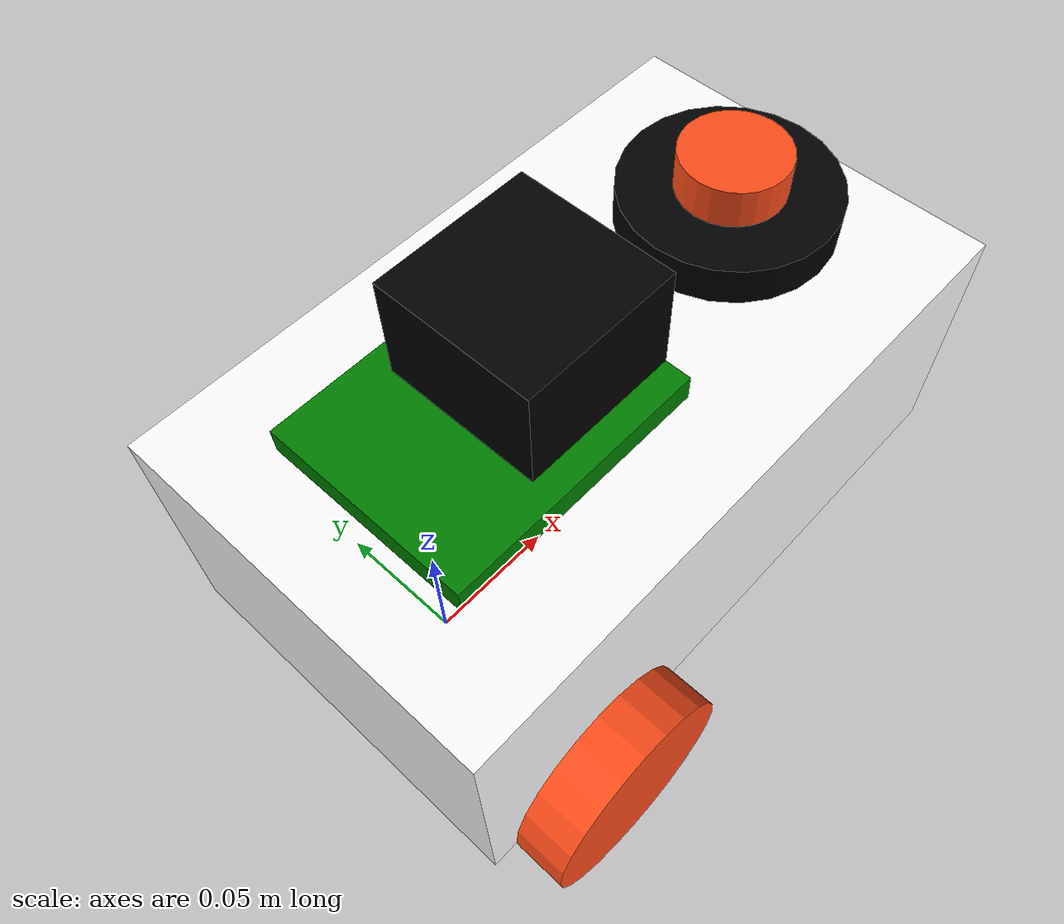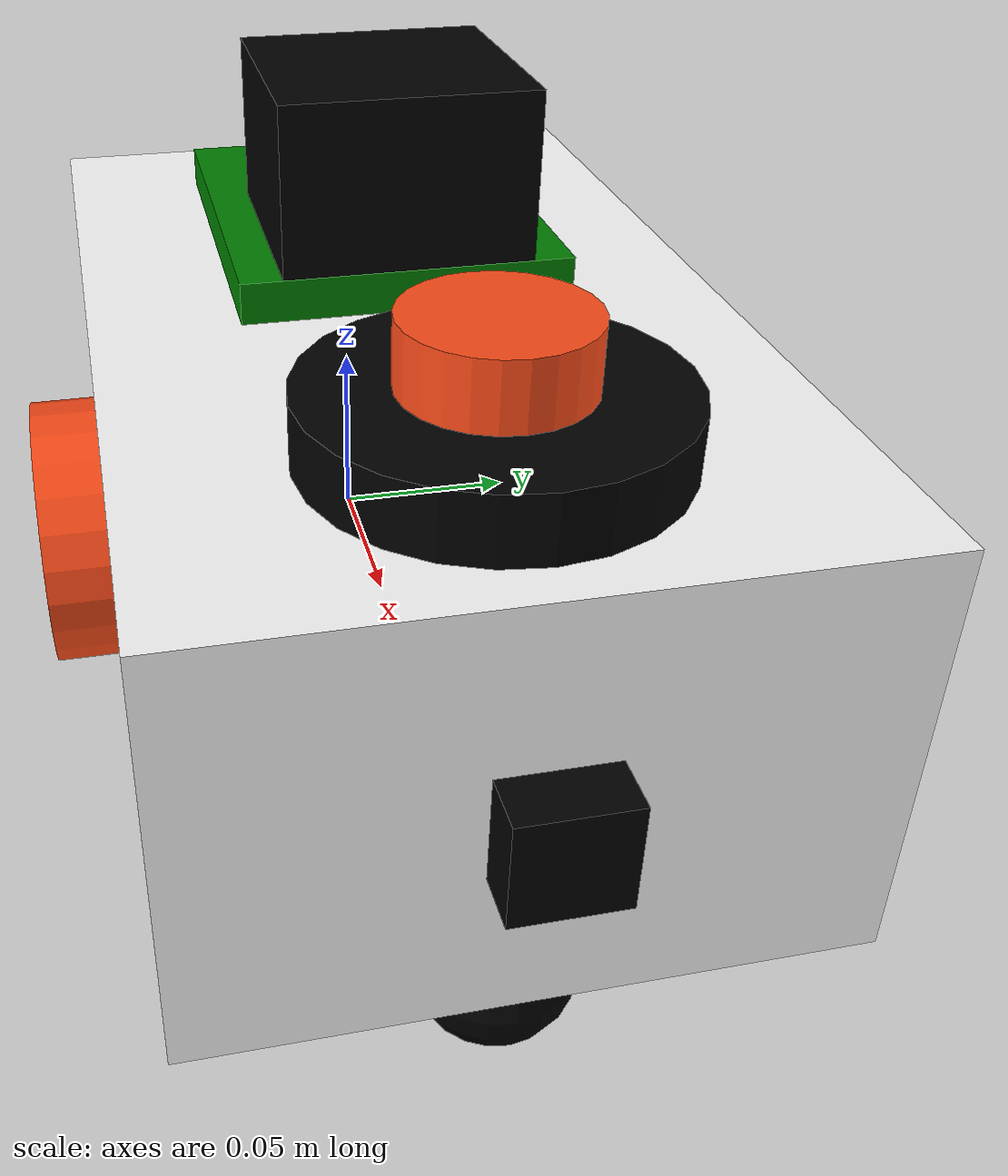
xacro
<?xml version="1.0"?>
<robot xmlns:xacro="http://www.ros.org/wiki/xacro" name="mini_nara">

    <material name="white"><color rgba="1 1 1 1"/></material>
    <material name="orange"><color rgba="1 0.3 0.1 1"/></material>
    <material name="black"><color rgba="0 0 0 1"/></material>
    <material name="green"><color rgba="0 0.5 0 1"/></material>

    <xacro:include filename="lidar.xacro" />
    <xacro:include filename="camera.xacro" />
    <xacro:include filename="jetson_nano.xacro" />

    <xacro:macro name="inertial_box" params="mass x y z *origin">
        <inertial>
            <xacro:insert_block name="origin"/>
            <mass value="${mass}" />
            <inertia ixx="${(1/12) * mass * (y*y+z*z)}" ixy="0.0" ixz="0.0" iyy="${(1/12) * mass * (x*x+z*z)}" iyz="0.0" izz="${(1/12) * mass * (x*x+y*y)}" />
        </inertial>
    </xacro:macro>

    <xacro:macro name="inertial_cylinder" params="mass length radius *origin">
        <inertial>
            <xacro:insert_block name="origin"/>
            <mass value="${mass}" />
            <inertia ixx="${(1/12) * mass * (3*radius*radius + length*length)}" ixy="0.0" ixz="0.0" iyy="${(1/12) * mass * (3*radius*radius + length*length)}" iyz="0.0" izz="${(1/2) * mass * (radius*radius)}" />
        </inertial>
    </xacro:macro>

    <xacro:macro name="inertial_sphere" params="mass radius *origin">
        <inertial>
            <xacro:insert_block name="origin"/>
            <mass value="${mass}" />
            <inertia ixx="${(2/5) * mass * (radius*radius)}" ixy="0.0" ixz="0.0" iyy="${(2/5) * mass * (radius*radius)}" iyz="0.0" izz="${(2/5) * mass * (radius*radius)}" />
        </inertial>
    </xacro:macro>

    <link name="base_link"></link>

    <joint name="chassi_joint" type="fixed">
        <parent link="base_link"/>
        <child link="chassi"/>
        <origin xyz="-0.05 0 0" rpy="0 0 0"/>
    </joint>

    <link name="chassi">
        <visual>
            <origin xyz="0.125 0 0.05" rpy="0 0 0"/>
            <geometry><box size="0.25 0.15 0.10"/></geometry>
            <material name="white"/>
        </visual>
        <collision>
            <origin xyz="0.125 0 0.05" rpy="0 0 0"/>
            <geometry><box size="0.25 0.15 0.10"/></geometry>
        </collision>
        <xacro:inertial_box mass="0.5" x="0.25" y="0.15" z="0.10">
            <origin xyz="0.125 0 0.05" rpy="0 0 0"/>
        </xacro:inertial_box>
    </link>

    <joint name="roda_esquerda_joint" type="continuous">
        <parent link="base_link"/>
        <child link="roda_esquerda"/>
        <origin xyz="0 0.085 0" rpy="-1.5708 0 0"/>
        <axis xyz="0 0 1"/>
    </joint>

    <link name="roda_esquerda">
        <visual><geometry><cylinder radius="0.04" length="0.02"/></geometry><material name="orange"/></visual>
        <collision><geometry><cylinder radius="0.04" length="0.02"/></geometry></collision>
        <xacro:inertial_cylinder mass="0.1" length="0.02" radius="0.04"><origin xyz="0 0 0" rpy="0 0 0"/></xacro:inertial_cylinder>
    </link>

    <joint name="roda_direita_joint" type="continuous">
        <parent link="base_link"/>
        <child link="roda_direita"/>
        <origin xyz="0 -0.085 0" rpy="-1.5708 0 0"/>
        <axis xyz="0 0 1"/>
    </joint>

    <link name="roda_direita">
        <visual><geometry><cylinder radius="0.04" length="0.02"/></geometry><material name="orange"/></visual>
        <collision><geometry><cylinder radius="0.04" length="0.02"/></geometry></collision>
        <xacro:inertial_cylinder mass="0.1" length="0.02" radius="0.04"><origin xyz="0 0 0" rpy="0 0 0"/></xacro:inertial_cylinder>
    </link>

    <joint name="caster_wheel_joint" type="fixed">
        <parent link="chassi"/>
        <child link="caster_wheel"/>
        <origin xyz="0.22 0 -0.02" rpy="0 0 0"/>
    </joint>

    <link name="caster_wheel">
        <visual><geometry><sphere radius="0.02"/></geometry><material name="black"/></visual>
        <collision><geometry><sphere radius="0.02"/></geometry></collision>
        <xacro:inertial_sphere mass="0.1" radius="0.02"><origin xyz="0 0 0" rpy="0 0 0"/></xacro:inertial_sphere>
    </link>

    <xacro:jetson_nano_base parent_link="chassi" xyz="0.08 0 0.10" rpy="0 0 0"/>
    <xacro:lidar parent_link="chassi" xyz="0.20 0 0.10" rpy="0 0 0"/>
    <xacro:camera_sensor parent_link="chassi" xyz="0.25 0 0.05" rpy="0 0 0"/>

    <gazebo reference="caster_wheel">
        <mu1>0.0</mu1>
        <mu2>0.0</mu2>
    </gazebo>

    <gazebo>
        <plugin filename="gz-sim-diff-drive-system" name="gz::sim::systems::DiffDrive">
            <left_joint>roda_esquerda_joint</left_joint>
            <right_joint>roda_direita_joint</right_joint>
            <wheel_separation>0.17</wheel_separation>
            <wheel_radius>0.04</wheel_radius>
            <max_linear_acceleration>1.0</max_linear_acceleration>
            <max_angular_acceleration>2.0</max_angular_acceleration>
            <topic>cmd_vel</topic>
            <odom_topic>odom</odom_topic>
            <frame_id>odom</frame_id>
            <child_frame_id>base_link</child_frame_id>
        </plugin>
    </gazebo>

</robot>

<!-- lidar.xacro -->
<robot xmlns:xacro="http://www.ros.org/wiki/xacro">

    <xacro:macro name="lidar" params="parent_link xyz rpy">

        <joint name="lidar_joint" type="fixed">
            <parent link="${parent_link}"/>
            <child link="lidar_link"/>
            <origin xyz="${xyz}" rpy="${rpy}"/>
        </joint>

        <link name="lidar_link">
            <visual>
                <origin xyz="0 0 0" rpy="0 0 0"/>
                <geometry><cylinder radius="0.04" length="0.03"/></geometry>
                <material name="black"/>
            </visual>
            <visual>
                <origin xyz="0 0 0.02" rpy="0 0 0"/>
                <geometry><cylinder radius="0.02" length="0.02"/></geometry>
                <material name="orange"/>
            </visual>
            <collision>
                 <origin xyz="0 0 0.01" rpy="0 0 0"/>
                <geometry><cylinder radius="0.04" length="0.05"/></geometry>
            </collision>
        </link>

        <gazebo reference="lidar_link">
            <sensor name="lidar" type="gpu_lidar">
                <pose>0 0 0.02 0 0 0</pose>
                <topic>scan</topic>
                <update_rate>10</update_rate>
                <ray>
                    <scan>
                        <horizontal>
                            <samples>360</samples>
                            <resolution>1</resolution>
                            <min_angle>-3.14159</min_angle> <max_angle>3.14159</max_angle>  </horizontal>
                    </scan>
                    <range>
                        <min>0.15</min> <max>8.0</max>  <resolution>0.01</resolution>
                    </range>
                </ray>
                <always_on>1</always_on>
                <visualize>true</visualize> </sensor>
        </gazebo>

    </xacro:macro>
</robot>

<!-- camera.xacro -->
<robot xmlns:xacro="http://www.ros.org/wiki/xacro">

    <xacro:macro name="camera_sensor" params="parent_link xyz rpy">

        <joint name="camera_joint" type="fixed">
            <parent link="${parent_link}"/>
            <child link="camera_link"/>
            <origin xyz="${xyz}" rpy="${rpy}"/>
        </joint>

        <link name="camera_link">
            <visual>
                <origin xyz="0 0 0" rpy="0 0 0"/>
                <geometry>
                    <box size="0.025 0.025 0.025"/>
                </geometry>
                <material name="black"/>
            </visual>
            <collision>
                <geometry>
                    <box size="0.025 0.025 0.025"/>
                </geometry>
            </collision>
        </link>
    </xacro:macro>
</robot>

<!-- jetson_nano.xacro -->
<robot xmlns:xacro="http://www.ros.org/wiki/xacro">

    <xacro:macro name="jetson_nano_base" params="parent_link xyz rpy">

        <joint name="jetson_nano_joint" type="fixed">
            <parent link="${parent_link}"/>
            <child link="jetson_nano_link"/>
            <origin xyz="${xyz}" rpy="${rpy}"/>
        </joint>

        <link name="jetson_nano_link">
            <visual>
                <origin xyz="0 0 0.005" rpy="0 0 0"/>
                <geometry>
                    <box size="0.10 0.08 0.01"/>
                </geometry>
                <material name="green">
                    <color rgba="0 0.5 0 1"/>
                </material>
            </visual>
            <visual>
                <origin xyz="0.02 0 0.03" rpy="0 0 0"/>
                <geometry>
                    <box size="0.06 0.06 0.04"/>
                </geometry>
                <material name="black"/>
            </visual>
            <collision>
                <origin xyz="0 0 0.02" rpy="0 0 0"/>
                <geometry>
                    <box size="0.10 0.08 0.04"/>
                </geometry>
            </collision>
        </link>
    </xacro:macro>
</robot>
